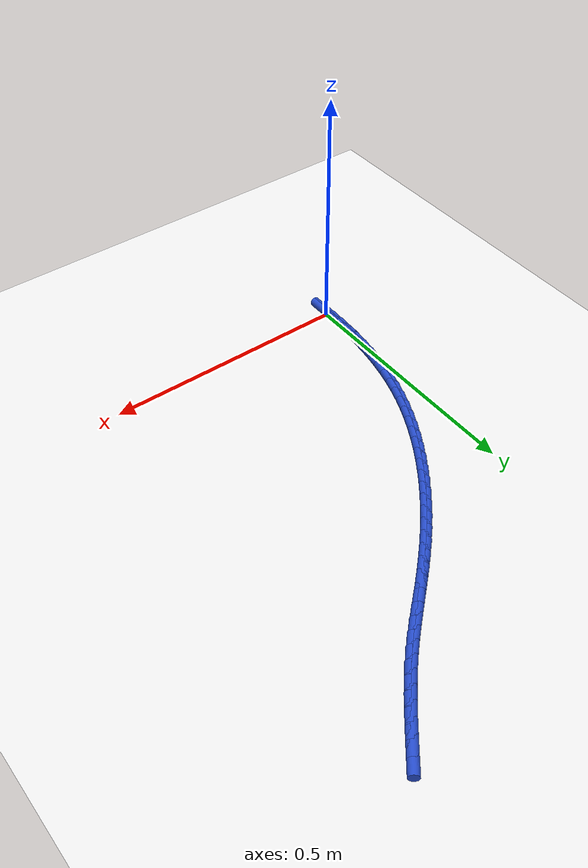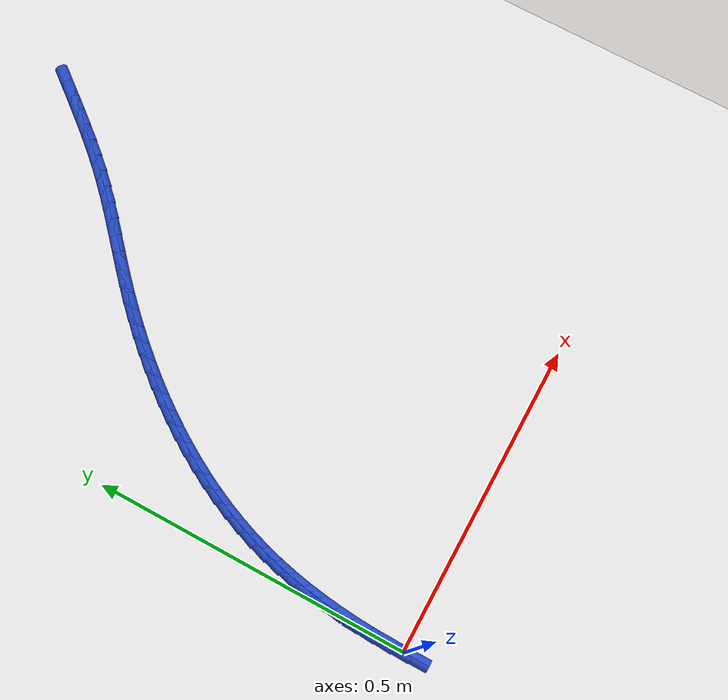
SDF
<sdf version="1.6">
 <world name="default">
  <model name="ground_plane">
   <static>1</static>
   <link name="link">
    <collision name="collision">
     <geometry><plane><normal>0 0 1</normal><size>100 100</size></plane></geometry>
     <surface><friction><ode><mu>100</mu><mu2>50</mu2></ode></friction></surface>
    </collision>
    <visual name="visual">
     <cast_shadows>0</cast_shadows>
     <geometry><plane><normal>0 0 1</normal><size>100 100</size></plane></geometry>
     <material>
      <script><uri>file://media/materials/scripts/gazebo.material</uri><name>Gazebo/WhiteGlow</name></script>
     </material>
    </visual>
   </link>
  </model>
  <model name="line">
   <link name="link_0">
    <pose>8.673617379884035e-18 -2.0816681711721685e-17 0.01 0 1.57 1.5663600836026919</pose>
    <collision name="collision">
     <geometry><cylinder><radius>0.01</radius><length>0.08</length></cylinder></geometry>
    </collision>
    <visual name="visual">
     <material>
      <script><name>Gazebo/Blue</name><uri>file://media/materials/scripts/gazebo.material</uri></script>
     </material>
     <geometry><cylinder><radius>0.01</radius><length>0.08</length></cylinder></geometry>
    </visual>
   </link>
   <link name="link_1">
    <pose>0.00012192566793936917 0.027483810695920288 0.01 0 1.57 1.5422133245262204</pose>
    <collision name="collision">
     <geometry><cylinder><radius>0.01</radius><length>0.08</length></cylinder></geometry>
    </collision>
    <visual name="visual">
     <material>
      <script><name>Gazebo/Blue</name><uri>file://media/materials/scripts/gazebo.material</uri></script>
     </material>
     <geometry><cylinder><radius>0.01</radius><length>0.08</length></cylinder></geometry>
    </visual>
   </link>
   <link name="link_2">
    <pose>0.0009075358514911203 0.05496154798233627 0.01 0 1.57 1.5158821200807908</pose>
    <collision name="collision">
     <geometry><cylinder><radius>0.01</radius><length>0.08</length></cylinder></geometry>
    </collision>
    <visual name="visual">
     <material>
      <script><name>Gazebo/Blue</name><uri>file://media/materials/scripts/gazebo.material</uri></script>
     </material>
     <geometry><cylinder><radius>0.01</radius><length>0.08</length></cylinder></geometry>
    </visual>
   </link>
   <link name="link_3">
    <pose>0.0024153194357329987 0.08239101952638368 0.01 0 1.57 1.4872847770047268</pose>
    <collision name="collision">
     <geometry><cylinder><radius>0.01</radius><length>0.08</length></cylinder></geometry>
    </collision>
    <visual name="visual">
     <material>
      <script><name>Gazebo/Blue</name><uri>file://media/materials/scripts/gazebo.material</uri></script>
     </material>
     <geometry><cylinder><radius>0.01</radius><length>0.08</length></cylinder></geometry>
    </visual>
   </link>
   <link name="link_4">
    <pose>0.004703765305742742 0.10973003299519836 0.01 0 1.57 1.4563404634031636</pose>
    <collision name="collision">
     <geometry><cylinder><radius>0.01</radius><length>0.08</length></cylinder></geometry>
    </collision>
    <visual name="visual">
     <material>
      <script><name>Gazebo/Blue</name><uri>file://media/materials/scripts/gazebo.material</uri></script>
     </material>
     <geometry><cylinder><radius>0.01</radius><length>0.08</length></cylinder></geometry>
    </visual>
   </link>
   <link name="link_5">
    <pose>0.007831362346598085 0.13693639605591607 0.01 0 1.57 1.4229735264105285</pose>
    <collision name="collision">
     <geometry><cylinder><radius>0.01</radius><length>0.08</length></cylinder></geometry>
    </collision>
    <visual name="visual">
     <material>
      <script><name>Gazebo/Blue</name><uri>file://media/materials/scripts/gazebo.material</uri></script>
     </material>
     <geometry><cylinder><radius>0.01</radius><length>0.08</length></cylinder></geometry>
    </visual>
   </link>
   <link name="link_6">
    <pose>0.011856599443376758 0.16396791637567254 0.01 0 1.57 1.3871187343726636</pose>
    <collision name="collision">
     <geometry><cylinder><radius>0.01</radius><length>0.08</length></cylinder></geometry>
    </collision>
    <visual name="visual">
     <material>
      <script><name>Gazebo/Blue</name><uri>file://media/materials/scripts/gazebo.material</uri></script>
     </material>
     <geometry><cylinder><radius>0.01</radius><length>0.08</length></cylinder></geometry>
    </visual>
   </link>
   <link name="link_7">
    <pose>0.0168379654811565 0.19078240162160356 0.01 0 1.57 1.348727491570695</pose>
    <collision name="collision">
     <geometry><cylinder><radius>0.01</radius><length>0.08</length></cylinder></geometry>
    </collision>
    <visual name="visual">
     <material>
      <script><name>Gazebo/Blue</name><uri>file://media/materials/scripts/gazebo.material</uri></script>
     </material>
     <geometry><cylinder><radius>0.01</radius><length>0.08</length></cylinder></geometry>
    </visual>
   </link>
   <link name="link_8">
    <pose>0.022833949345015057 0.2173376594608451 0.01 0 1.57 1.30777497485197</pose>
    <collision name="collision">
     <geometry><cylinder><radius>0.01</radius><length>0.08</length></cylinder></geometry>
    </collision>
    <visual name="visual">
     <material>
      <script><name>Gazebo/Blue</name><uri>file://media/materials/scripts/gazebo.material</uri></script>
     </material>
     <geometry><cylinder><radius>0.01</radius><length>0.08</length></cylinder></geometry>
    </visual>
   </link>
   <link name="link_9">
    <pose>0.029903039920030156 0.24359149756053275 0.01 0 1.57 1.2646253186359724</pose>
    <collision name="collision">
     <geometry><cylinder><radius>0.01</radius><length>0.08</length></cylinder></geometry>
    </collision>
    <visual name="visual">
     <material>
      <script><name>Gazebo/Blue</name><uri>file://media/materials/scripts/gazebo.material</uri></script>
     </material>
     <geometry><cylinder><radius>0.01</radius><length>0.08</length></cylinder></geometry>
    </visual>
   </link>
   <link name="link_10">
    <pose>0.03809444601554173 0.2695045849948197 0.01 0 1.57 1.221922487475589</pose>
    <collision name="collision">
     <geometry><cylinder><radius>0.01</radius><length>0.08</length></cylinder></geometry>
    </collision>
    <visual name="visual">
     <material>
      <script><name>Gazebo/Blue</name><uri>file://media/materials/scripts/gazebo.material</uri></script>
     </material>
     <geometry><cylinder><radius>0.01</radius><length>0.08</length></cylinder></geometry>
    </visual>
   </link>
   <link name="link_11">
    <pose>0.04738973502929857 0.295058447306627 0.01 0 1.57 1.1808572579565573</pose>
    <collision name="collision">
     <geometry><cylinder><radius>0.01</radius><length>0.08</length></cylinder></geometry>
    </collision>
    <visual name="visual">
     <material>
      <script><name>Gazebo/Blue</name><uri>file://media/materials/scripts/gazebo.material</uri></script>
     </material>
     <geometry><cylinder><radius>0.01</radius><length>0.08</length></cylinder></geometry>
    </visual>
   </link>
   <link name="link_12">
    <pose>0.057740522825169845 0.32024384525760086 0.01 0 1.57 1.141448639702506</pose>
    <collision name="collision">
     <geometry><cylinder><radius>0.01</radius><length>0.08</length></cylinder></geometry>
    </collision>
    <visual name="visual">
     <material>
      <script><name>Gazebo/Blue</name><uri>file://media/materials/scripts/gazebo.material</uri></script>
     </material>
     <geometry><cylinder><radius>0.01</radius><length>0.08</length></cylinder></geometry>
    </visual>
   </link>
   <link name="link_13">
    <pose>0.06909829164547844 0.3450515808100888 0.01 0 1.57 1.1036890187400088</pose>
    <collision name="collision">
     <geometry><cylinder><radius>0.01</radius><length>0.08</length></cylinder></geometry>
    </collision>
    <visual name="visual">
     <material>
      <script><name>Gazebo/Blue</name><uri>file://media/materials/scripts/gazebo.material</uri></script>
     </material>
     <geometry><cylinder><radius>0.01</radius><length>0.08</length></cylinder></geometry>
    </visual>
   </link>
   <link name="link_14">
    <pose>0.08141452373254733 0.36947245592643835 0.01 0 1.57 1.0675528361045028</pose>
    <collision name="collision">
     <geometry><cylinder><radius>0.01</radius><length>0.08</length></cylinder></geometry>
    </collision>
    <visual name="visual">
     <material>
      <script><name>Gazebo/Blue</name><uri>file://media/materials/scripts/gazebo.material</uri></script>
     </material>
     <geometry><cylinder><radius>0.01</radius><length>0.08</length></cylinder></geometry>
    </visual>
   </link>
   <link name="link_15">
    <pose>0.09464070132869941 0.3934972725689971 0.01 0 1.57 1.032999993604707</pose>
    <collision name="collision">
     <geometry><cylinder><radius>0.01</radius><length>0.08</length></cylinder></geometry>
    </collision>
    <visual name="visual">
     <material>
      <script><name>Gazebo/Blue</name><uri>file://media/materials/scripts/gazebo.material</uri></script>
     </material>
     <geometry><cylinder><radius>0.01</radius><length>0.08</length></cylinder></geometry>
    </visual>
   </link>
   <link name="link_16">
    <pose>0.10872830667625771 0.4171168327001126 0.01 0 1.57 0.9999789948081577</pose>
    <collision name="collision">
     <geometry><cylinder><radius>0.01</radius><length>0.08</length></cylinder></geometry>
    </collision>
    <visual name="visual">
     <material>
      <script><name>Gazebo/Blue</name><uri>file://media/materials/scripts/gazebo.material</uri></script>
     </material>
     <geometry><cylinder><radius>0.01</radius><length>0.08</length></cylinder></geometry>
    </visual>
   </link>
   <link name="link_17">
    <pose>0.1236288220175451 0.44032193828213245 0.01 0 1.57 0.9684297389983882</pose>
    <collision name="collision">
     <geometry><cylinder><radius>0.01</radius><length>0.08</length></cylinder></geometry>
    </collision>
    <visual name="visual">
     <material>
      <script><name>Gazebo/Blue</name><uri>file://media/materials/scripts/gazebo.material</uri></script>
     </material>
     <geometry><cylinder><radius>0.01</radius><length>0.08</length></cylinder></geometry>
    </visual>
   </link>
   <link name="link_18">
    <pose>0.1392937295948845 0.46310339127740424 0.01 0 1.57 0.9382859299687416</pose>
    <collision name="collision">
     <geometry><cylinder><radius>0.01</radius><length>0.08</length></cylinder></geometry>
    </collision>
    <visual name="visual">
     <material>
      <script><name>Gazebo/Blue</name><uri>file://media/materials/scripts/gazebo.material</uri></script>
     </material>
     <geometry><cylinder><radius>0.01</radius><length>0.08</length></cylinder></geometry>
    </visual>
   </link>
   <link name="link_19">
    <pose>0.15567451165059892 0.48545199364827557 0.01 0 1.57 0.909477094309164</pose>
    <collision name="collision">
     <geometry><cylinder><radius>0.01</radius><length>0.08</length></cylinder></geometry>
    </collision>
    <visual name="visual">
     <material>
      <script><name>Gazebo/Blue</name><uri>file://media/materials/scripts/gazebo.material</uri></script>
     </material>
     <geometry><cylinder><radius>0.01</radius><length>0.08</length></cylinder></geometry>
    </visual>
   </link>
   <link name="link_20">
    <pose>0.17272265042701124 0.5073585473570938 0.01 0 1.57 0.8819302261880976</pose>
    <collision name="collision">
     <geometry><cylinder><radius>0.01</radius><length>0.08</length></cylinder></geometry>
    </collision>
    <visual name="visual">
     <material>
      <script><name>Gazebo/Blue</name><uri>file://media/materials/scripts/gazebo.material</uri></script>
     </material>
     <geometry><cylinder><radius>0.01</radius><length>0.08</length></cylinder></geometry>
    </visual>
   </link>
   <link name="link_21">
    <pose>0.1903896281664445 0.5288138543662069 0.01 0 1.57 0.8555710892377606</pose>
    <collision name="collision">
     <geometry><cylinder><radius>0.01</radius><length>0.08</length></cylinder></geometry>
    </collision>
    <visual name="visual">
     <material>
      <script><name>Gazebo/Blue</name><uri>file://media/materials/scripts/gazebo.material</uri></script>
     </material>
     <geometry><cylinder><radius>0.01</radius><length>0.08</length></cylinder></geometry>
    </visual>
   </link>
   <link name="link_22">
    <pose>0.20862692711122144 0.5498087166379619 0.01 0 1.57 0.8303252129808268</pose>
    <collision name="collision">
     <geometry><cylinder><radius>0.01</radius><length>0.08</length></cylinder></geometry>
    </collision>
    <visual name="visual">
     <material>
      <script><name>Gazebo/Blue</name><uri>file://media/materials/scripts/gazebo.material</uri></script>
     </material>
     <geometry><cylinder><radius>0.01</radius><length>0.08</length></cylinder></geometry>
    </visual>
   </link>
   <link name="link_23">
    <pose>0.22738602950366515 0.5703339361347067 0.01 0 1.57 0.8061186231546273</pose>
    <collision name="collision">
     <geometry><cylinder><radius>0.01</radius><length>0.08</length></cylinder></geometry>
    </collision>
    <visual name="visual">
     <material>
      <script><name>Gazebo/Blue</name><uri>file://media/materials/scripts/gazebo.material</uri></script>
     </material>
     <geometry><cylinder><radius>0.01</radius><length>0.08</length></cylinder></geometry>
    </visual>
   </link>
   <link name="link_24">
    <pose>0.24661841758609862 0.5903803148187889 0.01 0 1.57 0.7828783438797636</pose>
    <collision name="collision">
     <geometry><cylinder><radius>0.01</radius><length>0.08</length></cylinder></geometry>
    </collision>
    <visual name="visual">
     <material>
      <script><name>Gazebo/Blue</name><uri>file://media/materials/scripts/gazebo.material</uri></script>
     </material>
     <geometry><cylinder><radius>0.01</radius><length>0.08</length></cylinder></geometry>
    </visual>
   </link>
   <link name="link_25">
    <pose>0.2662755736008447 0.609938654652556 0.01 0 1.57 0.7609730513658597</pose>
    <collision name="collision">
     <geometry><cylinder><radius>0.01</radius><length>0.08</length></cylinder></geometry>
    </collision>
    <visual name="visual">
     <material>
      <script><name>Gazebo/Blue</name><uri>file://media/materials/scripts/gazebo.material</uri></script>
     </material>
     <geometry><cylinder><radius>0.01</radius><length>0.08</length></cylinder></geometry>
    </visual>
   </link>
   <link name="link_26">
    <pose>0.28630177495491677 0.6290097111537828 0.01 0 1.57 0.7443623579335109</pose>
    <collision name="collision">
     <geometry><cylinder><radius>0.01</radius><length>0.08</length></cylinder></geometry>
    </collision>
    <visual name="visual">
     <material>
      <script><name>Gazebo/Blue</name><uri>file://media/materials/scripts/gazebo.material</uri></script>
     </material>
     <geometry><cylinder><radius>0.01</radius><length>0.08</length></cylinder></geometry>
    </visual>
   </link>
   <link name="link_27">
    <pose>0.3065758810578792 0.6476846154887604 0.01 0 1.57 0.7352147930448082</pose>
    <collision name="collision">
     <geometry><cylinder><radius>0.01</radius><length>0.08</length></cylinder></geometry>
    </collision>
    <visual name="visual">
     <material>
      <script><name>Gazebo/Blue</name><uri>file://media/materials/scripts/gazebo.material</uri></script>
     </material>
     <geometry><cylinder><radius>0.01</radius><length>0.08</length></cylinder></geometry>
    </visual>
   </link>
   <link name="link_28">
    <pose>0.3269418840385629 0.6661026683372335 0.01 0 1.57 0.7336184679128666</pose>
    <collision name="collision">
     <geometry><cylinder><radius>0.01</radius><length>0.08</length></cylinder></geometry>
    </collision>
    <visual name="visual">
     <material>
      <script><name>Gazebo/Blue</name><uri>file://media/materials/scripts/gazebo.material</uri></script>
     </material>
     <geometry><cylinder><radius>0.01</radius><length>0.08</length></cylinder></geometry>
    </visual>
   </link>
   <link name="link_29">
    <pose>0.34724345059569356 0.684403619964046 0.01 0 1.57 0.7396749762467577</pose>
    <collision name="collision">
     <geometry><cylinder><radius>0.01</radius><length>0.08</length></cylinder></geometry>
    </collision>
    <visual name="visual">
     <material>
      <script><name>Gazebo/Blue</name><uri>file://media/materials/scripts/gazebo.material</uri></script>
     </material>
     <geometry><cylinder><radius>0.01</radius><length>0.08</length></cylinder></geometry>
    </visual>
   </link>
   <link name="link_30">
    <pose>0.36732424742799646 0.7027272206340414 0.01 0 1.57 0.7535235582046028</pose>
    <collision name="collision">
     <geometry><cylinder><radius>0.01</radius><length>0.08</length></cylinder></geometry>
    </collision>
    <visual name="visual">
     <material>
      <script><name>Gazebo/Blue</name><uri>file://media/materials/scripts/gazebo.material</uri></script>
     </material>
     <geometry><cylinder><radius>0.01</radius><length>0.08</length></cylinder></geometry>
    </visual>
   </link>
   <link name="link_31">
    <pose>0.38702794123419726 0.7212132206120635 0.01 0 1.57 0.7753320133204081</pose>
    <collision name="collision">
     <geometry><cylinder><radius>0.01</radius><length>0.08</length></cylinder></geometry>
    </collision>
    <visual name="visual">
     <material>
      <script><name>Gazebo/Blue</name><uri>file://media/materials/scripts/gazebo.material</uri></script>
     </material>
     <geometry><cylinder><radius>0.01</radius><length>0.08</length></cylinder></geometry>
    </visual>
   </link>
   <link name="link_32">
    <pose>0.40619819871302126 0.7400013701629558 0.01 0 1.57 0.8042390803187631</pose>
    <collision name="collision">
     <geometry><cylinder><radius>0.01</radius><length>0.08</length></cylinder></geometry>
    </collision>
    <visual name="visual">
     <material>
      <script><name>Gazebo/Blue</name><uri>file://media/materials/scripts/gazebo.material</uri></script>
     </material>
     <geometry><cylinder><radius>0.01</radius><length>0.08</length></cylinder></geometry>
    </visual>
   </link>
   <link name="link_33">
    <pose>0.4247084359366143 0.7592225867020511 0.01 0 1.57 0.8324504869114397</pose>
    <collision name="collision">
     <geometry><cylinder><radius>0.01</radius><length>0.08</length></cylinder></geometry>
    </collision>
    <visual name="visual">
     <material>
      <script><name>Gazebo/Blue</name><uri>file://media/materials/scripts/gazebo.material</uri></script>
     </material>
     <geometry><cylinder><radius>0.01</radius><length>0.08</length></cylinder></geometry>
    </visual>
   </link>
   <link name="link_34">
    <pose>0.44265416155738607 0.7789418464125376 0.01 0 1.57 0.8560008965633754</pose>
    <collision name="collision">
     <geometry><cylinder><radius>0.01</radius><length>0.08</length></cylinder></geometry>
    </collision>
    <visual name="visual">
     <material>
      <script><name>Gazebo/Blue</name><uri>file://media/materials/scripts/gazebo.material</uri></script>
     </material>
     <geometry><cylinder><radius>0.01</radius><length>0.08</length></cylinder></geometry>
    </visual>
   </link>
   <link name="link_35">
    <pose>0.46023130458858236 0.7991943097929985 0.01 0 1.57 0.8745176464956673</pose>
    <collision name="collision">
     <geometry><cylinder><radius>0.01</radius><length>0.08</length></cylinder></geometry>
    </collision>
    <visual name="visual">
     <material>
      <script><name>Gazebo/Blue</name><uri>file://media/materials/scripts/gazebo.material</uri></script>
     </material>
     <geometry><cylinder><radius>0.01</radius><length>0.08</length></cylinder></geometry>
    </visual>
   </link>
   <link name="link_36">
    <pose>0.47763628684318526 0.8200149910254603 0.01 0 1.57 0.8878527197833259</pose>
    <collision name="collision">
     <geometry><cylinder><radius>0.01</radius><length>0.08</length></cylinder></geometry>
    </collision>
    <visual name="visual">
     <material>
      <script><name>Gazebo/Blue</name><uri>file://media/materials/scripts/gazebo.material</uri></script>
     </material>
     <geometry><cylinder><radius>0.01</radius><length>0.08</length></cylinder></geometry>
    </visual>
   </link>
   <link name="link_37">
    <pose>0.4950655301341765 0.8414389042919485 0.01 0 1.57 0.8960498969316935</pose>
    <collision name="collision">
     <geometry><cylinder><radius>0.01</radius><length>0.08</length></cylinder></geometry>
    </collision>
    <visual name="visual">
     <material>
      <script><name>Gazebo/Blue</name><uri>file://media/materials/scripts/gazebo.material</uri></script>
     </material>
     <geometry><cylinder><radius>0.01</radius><length>0.08</length></cylinder></geometry>
    </visual>
   </link>
   <link name="link_38">
    <pose>0.5127154562745383 0.8635010637744898 0.01 0 1.57 0.8990206559172321</pose>
    <collision name="collision">
     <geometry><cylinder><radius>0.01</radius><length>0.08</length></cylinder></geometry>
    </collision>
    <visual name="visual">
     <material>
      <script><name>Gazebo/Blue</name><uri>file://media/materials/scripts/gazebo.material</uri></script>
     </material>
     <geometry><cylinder><radius>0.01</radius><length>0.08</length></cylinder></geometry>
    </visual>
   </link>
   <link name="link_250">
    <pose>3.0357660829594124e-18 1.457167719820518e-16 0.01 0 1.57 1.5669061340921515</pose>
    <collision name="collision">
     <geometry><cylinder><radius>0.01</radius><length>0.08</length></cylinder></geometry>
    </collision>
    <visual name="visual">
     <material>
      <script><name>Gazebo/Blue</name><uri>file://media/materials/scripts/gazebo.material</uri></script>
     </material>
     <geometry><cylinder><radius>0.01</radius><length>0.08</length></cylinder></geometry>
    </visual>
   </link>
   <link name="link_251">
    <pose>0.00010693313920128074 0.0274877385116474 0.01 0 1.57 1.546054721695938</pose>
    <collision name="collision">
     <geometry><cylinder><radius>0.01</radius><length>0.08</length></cylinder></geometry>
    </collision>
    <visual name="visual">
     <material>
      <script><name>Gazebo/Blue</name><uri>file://media/materials/scripts/gazebo.material</uri></script>
     </material>
     <geometry><cylinder><radius>0.01</radius><length>0.08</length></cylinder></geometry>
    </visual>
   </link>
   <link name="link_252">
    <pose>0.0007875956215864354 0.05499297050815166 0.01 0 1.57 1.5564755550243596</pose>
    <collision name="collision">
     <geometry><cylinder><radius>0.01</radius><length>0.08</length></cylinder></geometry>
    </collision>
    <visual name="visual">
     <material>
      <script><name>Gazebo/Blue</name><uri>file://media/materials/scripts/gazebo.material</uri></script>
     </material>
     <geometry><cylinder><radius>0.01</radius><length>0.08</length></cylinder></geometry>
    </visual>
   </link>
  </model>
 </world>
</sdf>
